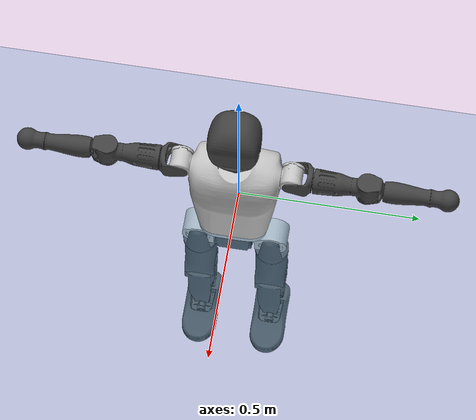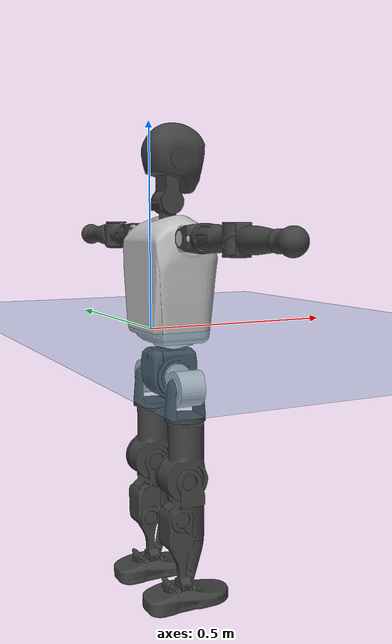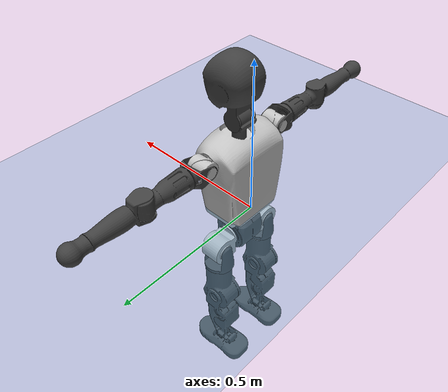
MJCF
<mujoco model="T1">
  <compiler angle="radian" assetdir="assets" balanceinertia="true" inertiafromgeom="false"/>

  <option timestep="0.005" density="1.2" viscosity="2e-05"/>

  <size nkey="1"/>

  <visual>
    <quality shadowsize="8192"/>
    <map shadowclip="0.5"/>
  </visual>

  <default>
    <default class="/">
      <joint armature="0.01" damping="0.01" frictionloss="0.1"/>
      <geom contype="0" conaffinity="0" group="1" solref="-1000 -80"/>
      <site size="0.01 0.005 0.005" group="5"/>
      <general forcelimited="true" biastype="affine" gainprm="25" biasprm="0 -25 -0.6"/>
      <default class="t1">
        <geom rgba="0.25 0.25 0.25 1"/>
        <default class="visual">
          <geom type="mesh" group="2"/>
        </default>
        <default class="collision">
          <geom group="3"/>
        </default>
        <default class="foot">
          <geom size="0.1115 0.05 0.015" type="box" condim="6" group="4" priority="1" solimp="0.015 1 0.015"/>
        </default>
        <default class="reward_collision_sphere">
          <geom group="5" rgba="1 0 0 1"/>
        </default>
      </default>
    </default>
  </default>

  <asset>
    <texture type="skybox" colorspace="auto" name="//unnamed_texture_0" builtin="gradient" rgb1="0.95 0.95 0.95" rgb2="0.95 0.95 0.95" width="100" height="600"/>
    <texture type="2d" colorspace="auto" name="texplane" builtin="checker" rgb1="0.345 0.575 0.748" rgb2="0.345 0.575 0.748" markrgb="1 1 1" width="512" height="512"/>
    <material name="MatPlane" class="/" texture="texplane" texuniform="true" texrepeat="2 2" specular="0.9"/>
    <mesh name="Trunk" class="/" file="Trunk.stl"/>
    <mesh name="H1" class="/" file="H1.stl"/>
    <mesh name="H2" class="/" file="H2.stl"/>
    <mesh name="AL1" class="/" file="AL1.stl"/>
    <mesh name="AL2" class="/" file="AL2.stl"/>
    <mesh name="AL3" class="/" file="AL3.stl"/>
    <mesh name="left_hand_link" class="/" file="left_hand_link.stl"/>
    <mesh name="AR1" class="/" file="AR1.stl"/>
    <mesh name="AR2" class="/" file="AR2.stl"/>
    <mesh name="AR3" class="/" file="AR3.stl"/>
    <mesh name="right_hand_link" class="/" file="right_hand_link.stl"/>
    <mesh name="Waist" class="/" file="Waist.stl"/>
    <mesh name="Hip_Pitch_Left" class="/" file="Hip_Pitch_Left.stl"/>
    <mesh name="Hip_Roll_Left" class="/" file="Hip_Roll_Left.stl"/>
    <mesh name="Hip_Yaw_Left" class="/" file="Hip_Yaw_Left.stl"/>
    <mesh name="Shank_Left" class="/" file="Shank_Left.stl"/>
    <mesh name="Ankle_Cross_Left" class="/" file="Ankle_Cross_Left.stl"/>
    <mesh name="left_foot_link" class="/" file="left_foot_link.stl"/>
    <mesh name="Hip_Pitch_Right" class="/" file="Hip_Pitch_Right.stl"/>
    <mesh name="Hip_Roll_Right" class="/" file="Hip_Roll_Right.stl"/>
    <mesh name="Hip_Yaw_Right" class="/" file="Hip_Yaw_Right.stl"/>
    <mesh name="Shank_Right" class="/" file="Shank_Right.stl"/>
    <mesh name="Ankle_Cross_Right" class="/" file="Ankle_Cross_Right.stl"/>
    <mesh name="right_foot_link" class="/" file="right_foot_link.stl"/>
  </asset>

  <worldbody>
    <geom name="floor" class="/" size="100 100 0.125" type="plane" group="0" material="MatPlane"/>
    <light name="toplight_shadow" class="/" pos="0 0 5" dir="0.0990148 0.0990148 -0.990148" type="directional" ambient="0.04 0.04 0.04" diffuse="0.55 0.55 0.55" specular="0.12 0.12 0.12"/>
    <light name="toplight_fill" class="/" pos="0 0 5" dir="0.0990148 0.0990148 -0.990148" type="directional" castshadow="false" ambient="0.04 0.04 0.04" diffuse="0.3 0.3 0.3" specular="0.08 0.08 0.08"/>
    <body name="trunk" childclass="t1" pos="7.70888e-05 0.000474643 -0.000694962" quat="1 1.45147e-05 6.50099e-05 7.39972e-06">
      <inertial pos="0.0427019 0.000194597 0.10757" quat="0.99992 0.00224332 -0.0122727 0.00203365" mass="9.44084" diaginertia="0.0281546 0.06759 0.0632536"/>
      <joint name="//unnamed_joint_0" type="free" armature="0" damping="0" frictionloss="0"/>
      <geom name="//unnamed_geom_1" class="visual" rgba="0.76 0.76 0.76 1" mesh="Trunk"/>
      <geom name="//unnamed_geom_2" class="collision" size="0.0697 0.0929334 0.1394" pos="0.0474257 0 0.123052" type="box"/>
      <geom name="//unnamed_geom_3" class="reward_collision_sphere" size="0.106873" pos="0.0474257 0 0.102543"/>
      <geom name="//unnamed_geom_4" class="reward_collision_sphere" size="0.01394" pos="0.0474257 0.0826319 0"/>
      <geom name="//unnamed_geom_5" class="reward_collision_sphere" size="0.01394" pos="0.0474257 -0.0826319 0"/>
      <geom name="//unnamed_geom_6" class="reward_collision_sphere" size="0.01394" pos="0.0474257 0.104019 0.184578"/>
      <geom name="//unnamed_geom_7" class="reward_collision_sphere" size="0.01394" pos="0.0474257 -0.104019 0.184578"/>
      <site name="imu" pos="8.75467e-07 -0.00107839 0.00174497" size="0.00929334"/>
      <camera name="track" pos="0 -1.94428 0" quat="0.707107 0.707107 0 0" mode="trackcom"/>
      <camera name="ego_camera" pos="0.0964323 0 0.430682" quat="-0.5 -0.5 0.5 0.5"/>
      <body name="H1" pos="0.0485963 0.000715467 0.248974" quat="1 8.10245e-05 -0.000103196 0.000162711">
        <inertial pos="-0.00135621 -0.00215304 0.0585189" quat="0.764139 -0.0131111 0.00184311 0.644916" mass="0.354896" diaginertia="7.49742e-05 0.000191738 0.000168794"/>
        <joint name="AAHead_yaw" pos="0 0 0" axis="0.000320992 0.0011299 0.999999" range="-1.57875 1.58068" armature="0.00941184" damping="0.0119249" frictionloss="0.097094"/>
        <geom name="//unnamed_geom_8" class="visual" mesh="H1"/>
        <body name="H2" pos="-0.000715012 -0.00050992 0.0622731" quat="1 5.55648e-05 -0.000361916 -0.00013909">
          <inertial pos="0.00614623 -3.7018e-05 0.1004" quat="0.987819 0.107822 -0.0768896 -0.0817053" mass="0.506077" diaginertia="0.000629218 0.00169483 0.00193582"/>
          <joint name="Head_pitch" pos="0 0 0" axis="0.00214554 -0.999992 -0.00330822" range="-1.21161 0.353668" armature="0.00920479" damping="0.00444282" frictionloss="0.0928906"/>
          <geom name="//unnamed_geom_9" class="visual" mesh="H2"/>
          <geom name="//unnamed_geom_10" class="collision" size="0.0743467" pos="0.00790428 0 0.112798"/>
          <geom name="//unnamed_geom_11" class="reward_collision_sphere" size="0.08364" pos="0.0158086 0 0.102543"/>
        </body>
      </body>
      <body name="AL1" pos="0.0459076 0.103542 0.225451" quat="1 9.22564e-05 0.000398055 5.20599e-05">
        <inertial pos="-0.000482306 0.0442815 -0.000238516" quat="0.504237 0.49573 -0.504227 0.495734" mass="0.427973" diaginertia="0.000429263 0.00113322 0.000336233"/>
        <joint name="Left_Shoulder_Pitch" pos="0 0 0" axis="-0.00239723 0.999995 -0.00181428" range="-3.30174 1.21782" armature="0.00972806" damping="0.0120955" frictionloss="0.0956104"/>
        <geom name="//unnamed_geom_12" class="visual" rgba="0.76 0.76 0.76 1" mesh="AL1"/>
        <body name="AL2" pos="0.000327605 0.046121 1.12478e-05" quat="1 1.01694e-06 -1.39579e-05 2.39591e-05">
          <inertial pos="0.00362405 0.0359612 -0.000232799" quat="0.491387 0.510207 -0.486223 0.511679" mass="0.128757" diaginertia="0.000123645 0.000301044 0.000201571"/>
          <joint name="Left_Shoulder_Roll" pos="0 0 0" axis="-0.999999 -0.000922909 0.000920026" stiffness="0.00265177" range="-1.57065 1.73063" armature="0.00887905" damping="0.000779247" frictionloss="0.0924878"/>
          <geom name="//unnamed_geom_13" class="visual" mesh="AL2"/>
          <body name="AL3" pos="0.0015811 0.0595261 0.000698131" quat="1 1.68828e-05 -1.34641e-06 1.79205e-05">
            <inertial pos="-0.000298226 0.0834035 -0.000753484" quat="0.708468 0.705739 -0.00190754 0.00157833" mass="0.825783" diaginertia="0.00399304 0.0113387 0.000707687"/>
            <joint name="Left_Elbow_Pitch" pos="0 0 0" axis="-0.00117828 -0.999999 -0.00073073" range="-2.26693 2.27946" armature="0.00903104" damping="0.00921656" frictionloss="0.0954965"/>
            <geom name="//unnamed_geom_14" class="visual" mesh="AL3"/>
            <geom name="//unnamed_geom_15" class="collision" size="0.02788 0.0697" pos="0 0.048607 0" quat="0.707105 0.707108 0 0" type="cylinder"/>
            <geom name="//unnamed_geom_16" class="reward_collision_sphere" size="0.033456"/>
            <body name="left_hand_link" pos="0.00131165 0.142986 0.00103885" quat="1 -0.000148059 -0.00011154 2.27661e-05">
              <inertial pos="-0.00080536 0.105814 0.000108764" quat="0.707011 0.707199 0.00183449 -0.000671524" mass="0.26463" diaginertia="0.00252249 0.00699046 0.00024413"/>
              <joint name="Left_Elbow_Yaw" pos="0 0 0" axis="0.00118915 0.000584518 0.999999" range="-2.43157 0.0136681" armature="0.00950306" damping="0.00962997" frictionloss="0.0892901"/>
              <geom name="//unnamed_geom_17" class="visual" mesh="left_hand_link"/>
              <geom name="//unnamed_geom_18" class="collision" size="0.02788 0.0813167" pos="0 0.126378 0" quat="0.707105 0.707108 0 0" type="cylinder"/>
              <geom name="//unnamed_geom_19" class="reward_collision_sphere" size="0.0464667"/>
              <geom name="//unnamed_geom_20" class="reward_collision_sphere" size="0.0325267" pos="0 0.106935 0"/>
              <geom name="//unnamed_geom_21" class="reward_collision_sphere" size="0.0325267" pos="0 0.20901 0"/>
            </body>
          </body>
        </body>
      </body>
      <body name="AR1" pos="0.0445411 -0.102413 0.224327" quat="1 -6.436e-05 0.000406953 5.73033e-05">
        <inertial pos="-0.00132477 -0.0437819 -0.000300035" quat="0.504231 0.495231 -0.505392 0.495051" mass="0.421025" diaginertia="0.000422182 0.00113361 0.000332468"/>
        <joint name="Right_Shoulder_Pitch" pos="0 0 0" axis="0.00252455 -0.999981 0.00560353" range="-1.22607 3.31164" armature="0.00903609" damping="0.00340702" frictionloss="0.0914124"/>
        <geom name="//unnamed_geom_22" class="visual" rgba="0.76 0.76 0.76 1" mesh="AR1"/>
        <body name="AR2" pos="-7.44384e-05 -0.0444739 0.000461237" quat="1 9.61337e-05 -9.32946e-05 -5.57846e-06">
          <inertial pos="0.0022645 -0.0370021 0.00081095" quat="0.511739 0.487952 -0.511632 0.488118" mass="0.128986" diaginertia="0.000123918 0.000303363 0.000201412"/>
          <joint name="Right_Shoulder_Roll" pos="0 0 0" axis="-0.999933 0.00951776 -0.0065323" range="-1.73393 1.5568" armature="0.00910025" damping="0.00909416" frictionloss="0.0905887"/>
          <geom name="//unnamed_geom_23" class="visual" mesh="AR2"/>
          <body name="AR3" pos="-0.000159573 -0.0585897 0.000898468" quat="1 0.000286852 -0.000133061 0.000146403">
            <inertial pos="-0.000414536 -0.0836769 -0.000328183" quat="0.708888 0.705318 0.000841798 -0.00197095" mass="0.822415" diaginertia="0.00402343 0.0112695 0.000713389"/>
            <joint name="Right_Elbow_Pitch" pos="0 0 0" axis="-0.00105522 0.999999 -0.000384699" range="-2.25836 2.27461" armature="0.00944926" damping="0.00569077" frictionloss="0.0936023"/>
            <geom name="//unnamed_geom_24" class="visual" mesh="AR3"/>
            <geom name="//unnamed_geom_25" class="collision" size="0.02788 0.0697" pos="0 -0.048607 0" quat="0.707105 0.707108 0 0" type="cylinder"/>
            <geom name="//unnamed_geom_26" class="reward_collision_sphere" size="0.033456"/>
            <body name="right_hand_link" pos="-0.000298 -0.142706 -0.000873036" quat="1 3.39905e-05 0.000142351 0.000202305">
              <inertial pos="-0.000428258 -0.106347 0.000617035" quat="0.705183 0.709013 -0.00299087 0.00272239" mass="0.263702" diaginertia="0.00255127 0.00711005 0.000246878"/>
              <joint name="Right_Elbow_Yaw" pos="0 0 0" axis="0.0018017 -0.000590912 0.999998" range="-0.00455883 2.43265" armature="0.00921326" damping="0.0067925" frictionloss="0.09371"/>
              <geom name="//unnamed_geom_27" class="visual" mesh="right_hand_link"/>
              <geom name="//unnamed_geom_28" class="collision" size="0.02788 0.0813167" pos="0 -0.126378 0" quat="0.707105 0.707108 0 0" type="cylinder"/>
              <geom name="//unnamed_geom_29" class="reward_collision_sphere" size="0.0464667"/>
              <geom name="//unnamed_geom_30" class="reward_collision_sphere" size="0.0325267" pos="0 -0.106935 0"/>
              <geom name="//unnamed_geom_31" class="reward_collision_sphere" size="0.0325267" pos="0 -0.20901 0"/>
            </body>
          </body>
        </body>
      </body>
      <body name="Waist" pos="0.049032 -0.000704498 -0.117742" quat="1 0.000147541 0.000120504 0.000304979">
        <inertial pos="0.00192978 5.97674e-05 0.00803077" quat="0.983654 0.000353577 -0.18005 0.0026708" mass="2.03122" diaginertia="0.00163592 0.00455265 0.00532972"/>
        <joint name="Waist" pos="0 0 0" axis="-0.00391502 -0.000943475 0.999992" range="-1.57112 1.56917" armature="0.00937247" damping="0.0138108" frictionloss="0.0918206"/>
        <geom name="//unnamed_geom_32" class="visual" mesh="Waist"/>
        <body name="Hip_Pitch_Left" pos="-0.000518015 0.102852 -0.000313096" quat="1 2.61438e-05 4.20869e-06 1.45348e-05">
          <inertial pos="0.000284082 -0.00754875 -0.0186337" quat="0.97476 0.222638 0.0165908 -0.000965873" mass="0.820728" diaginertia="0.000558289 0.00128629 0.00144457"/>
          <joint name="Left_Hip_Pitch" pos="0 0 0" axis="-0.000608304 1 -0.000365933" range="-1.80878 1.57495" armature="0.00923524" damping="0.00779103" frictionloss="0.091681"/>
          <geom name="//unnamed_geom_33" class="visual" rgba="0.76 0.76 0.76 1" mesh="Hip_Pitch_Left"/>
          <body name="Hip_Roll_Left" pos="0.000748875 -0.000460097 -0.0217275" quat="1 -0.000153012 0.000509533 0.000193172">
            <inertial pos="0.00117485 0.000632711 -0.054685" quat="0.705343 -0.00828017 -0.00642067 0.708789" mass="0.309669" diaginertia="0.000543611 0.00133099 0.000586413"/>
            <joint name="Left_Hip_Roll" pos="0 0 0" axis="-0.999998 0.00168356 0.00128541" range="-1.55365 0.203846" armature="0.00924498" damping="0.0114207" frictionloss="0.094028"/>
            <geom name="//unnamed_geom_34" class="visual" mesh="Hip_Roll_Left"/>
            <geom name="//unnamed_geom_35" class="reward_collision_sphere" size="0.0511134"/>
            <body name="Hip_Yaw_Left" pos="0.00192846 -0.00011536 -0.0847182" quat="1 0.0001287 -0.000212465 -9.4294e-05">
              <inertial pos="-0.00485516 -0.000724235 -0.0908404" quat="0.696867 -0.0357885 -0.0323727 0.715575" mass="1.73581" diaginertia="0.00798096 0.021829 0.00289838"/>
              <joint name="Left_Hip_Yaw" pos="0 0 0" axis="0.00479774 0.000831614 -0.999988" range="-0.995942 1.00168" armature="0.00942849" damping="0.00560081" frictionloss="0.0898013"/>
              <geom name="//unnamed_geom_36" class="visual" mesh="Hip_Yaw_Left"/>
              <geom name="//unnamed_geom_37" class="collision" size="0.0464667 0.0743467" type="cylinder"/>
              <body name="Shank_Left" pos="-0.011483 -0.000267462 -0.138169" quat="1 5.82349e-05 -2.65181e-05 4.55984e-05">
                <inertial pos="-0.00510667 0.000817288 -0.127843" quat="0.997677 0.0027901 -0.0221259 0.0643725" mass="1.40796" diaginertia="0.0107508 0.0304932 0.00213242"/>
                <joint name="Left_Knee_Pitch" pos="0 0 0" axis="-0.00316952 0.999993 -0.00192254" range="-0.0179357 2.32979" armature="0.00933441" damping="0.00709575" frictionloss="0.0930245"/>
                <geom name="//unnamed_geom_38" class="visual" mesh="Shank_Left"/>
                <geom name="//unnamed_geom_39" class="collision" size="0.0464667 0.0697" pos="0 0 -0.123052" type="cylinder"/>
                <geom name="//unnamed_geom_40" class="reward_collision_sphere" size="0.0604067"/>
                <body name="Ankle_Cross_Left" pos="0.000388063 0.00031433 -0.286888" quat="1 -0.000248756 -5.32371e-05 0.000293955">
                  <inertial pos="-0.0035351 0.000400537 -0.00740804" quat="0.443526 0.551047 0.551066 0.442672" mass="0.0585845" diaginertia="8.87983e-06 2.24129e-05 1.28564e-05"/>
                  <joint name="Left_Ankle_Pitch" pos="0 0 0" axis="-0.00232789 0.999993 0.00291432" range="-0.870959 0.349452" armature="0.00911366" damping="0.00455356" frictionloss="0.096696"/>
                  <geom name="//unnamed_geom_41" class="visual" mesh="Ankle_Cross_Left"/>
                  <body name="left_foot_link" pos="0.000190081 -0.0012557 -0.0124207" quat="1 0.000172408 4.83053e-05 7.8967e-05">
                    <inertial pos="-7.72969e-05 -0.000338982 -0.00942557" quat="9.20742e-05 0.623461 0.00285967 0.781849" mass="0.551034" diaginertia="0.000844615 0.00205616 0.00246799"/>
                    <joint name="Left_Ankle_Roll" pos="0 0 0" axis="-0.999998 0.000882753 -0.00188741" stiffness="2.79268e-05" range="-0.438995 0.445398" armature="0.00958231" damping="0.00814657" frictionloss="0.0926125"/>
                    <geom name="//unnamed_geom_42" class="visual" mesh="left_foot_link"/>
                    <geom name="left_foot" class="foot" size="0.101753 0.0438627 0.0140075" pos="0.00790428 0 -0.0153815"/>
                    <geom name="//unnamed_geom_44" class="reward_collision_sphere" size="0.0483254" pos="0.00790428 0 -0.0153815"/>
                    <geom name="//unnamed_geom_45" class="reward_collision_sphere" size="0.02788" pos="0.0750907 -0.0223592 -0.0153815"/>
                    <geom name="//unnamed_geom_46" class="reward_collision_sphere" size="0.02788" pos="-0.05533 -0.0223592 -0.0153815"/>
                    <site name="left_foot" class="foot" pos="0.00790428 0 -0.0153815" size="0.00929334"/>
                  </body>
                </body>
              </body>
            </body>
          </body>
        </body>
        <body name="Hip_Pitch_Right" pos="-0.00101462 -0.102797 0.000388839" quat="1 0.000355588 -8.20173e-05 0.000289441">
          <inertial pos="0.000558949 0.00762059 -0.0183543" quat="0.97425 -0.224825 0.0166914 -0.0033602" mass="0.830327" diaginertia="0.000560274 0.00128318 0.00142732"/>
          <joint name="Right_Hip_Pitch" pos="0 0 0" axis="-1.3373e-06 -1 -0.000152526" range="-1.56178 1.81812" armature="0.00975418" damping="0.00551597" frictionloss="0.0962292"/>
          <geom name="//unnamed_geom_47" class="visual" rgba="0.76 0.76 0.76 1" mesh="Hip_Pitch_Right"/>
          <body name="Hip_Roll_Right" pos="-0.000387716 0.00100282 -0.020658" quat="1 0.000262593 1.42773e-05 0.000272299">
            <inertial pos="0.00104485 -0.00058099 -0.0542803" quat="0.707129 -0.00603969 -0.00632132 0.707031" mass="0.307121" diaginertia="0.000532735 0.00129949 0.000577285"/>
            <joint name="Right_Hip_Roll" pos="0 0 0" axis="-0.999984 0.00502695 -0.00250615" stiffness="0.000854006" range="-0.197775 1.57081" armature="0.00916693" damping="0.00765165" frictionloss="0.0959743"/>
            <geom name="//unnamed_geom_48" class="visual" mesh="Hip_Roll_Right"/>
            <geom name="//unnamed_geom_49" class="reward_collision_sphere" size="0.0511134"/>
            <body name="Hip_Yaw_Right" pos="-0.000343678 0.000522854 -0.0847462" quat="1 -2.92297e-05 -8.03396e-05 -1.30178e-05">
              <inertial pos="-0.00471717 -0.00123094 -0.0922601" quat="0.714236 -0.0315015 -0.0342917 0.698354" mass="1.70341" diaginertia="0.00786268 0.0217755 0.00289532"/>
              <joint name="Right_Hip_Yaw" pos="0 0 0" axis="0.00104805 1.34932e-05 -0.999999" range="-0.985516 0.994126" armature="0.00904929" damping="0.00748383" frictionloss="0.0926429"/>
              <geom name="//unnamed_geom_50" class="visual" mesh="Hip_Yaw_Right"/>
              <geom name="//unnamed_geom_51" class="collision" size="0.0464667 0.0743467" type="cylinder"/>
              <body name="Shank_Right" pos="-0.0109102 -0.000669841 -0.138189" quat="1 0.000107234 5.9769e-05 -7.47617e-05">
                <inertial pos="-0.00488209 -0.000166678 -0.12505" quat="0.999241 -0.00256351 -0.0225485 -0.0316493" mass="1.44583" diaginertia="0.0107856 0.0306195 0.00224265"/>
                <joint name="Right_Knee_Pitch" pos="0 0 0" axis="0.00595954 -0.999974 0.00415404" range="-2.35667 -0.00890352" armature="0.00926349" damping="0.00849684" frictionloss="0.0927627"/>
                <geom name="//unnamed_geom_52" class="visual" mesh="Shank_Right"/>
                <geom name="//unnamed_geom_53" class="collision" size="0.0464667 0.0697" pos="0 0 -0.123052" type="cylinder"/>
                <geom name="//unnamed_geom_54" class="reward_collision_sphere" size="0.0604067"/>
                <body name="Ankle_Cross_Right" pos="0.0003904 -0.000225925 -0.287084" quat="1 -3.83844e-06 -0.000270924 0.000188848">
                  <inertial pos="-0.00330681 0.000548214 -0.00843434" quat="0.444423 0.550428 0.550136 0.443698" mass="0.0586363" diaginertia="8.87898e-06 2.2148e-05 1.28176e-05"/>
                  <joint name="Right_Ankle_Pitch" pos="0 0 0" axis="-0.000611981 -1 -2.5262e-05" range="-0.367348 0.865132" armature="0.00929002" damping="0.00965121" frictionloss="0.0955482"/>
                  <geom name="//unnamed_geom_55" class="visual" mesh="Ankle_Cross_Right"/>
                  <body name="right_foot_link" pos="0.000983279 -0.00136923 -0.0123452" quat="1 -0.000146133 2.54903e-05 6.19073e-05">
                    <inertial pos="-0.000899864 0.000787432 -0.00943959" quat="0.00240237 0.621248 -0.00326729 0.783604" mass="0.547612" diaginertia="0.00082884 0.00206128 0.00249268"/>
                    <joint name="Right_Ankle_Roll" pos="0 0 0" axis="-0.999999 -0.00053424 0.000981212" range="-0.449305 0.433799" armature="0.00895647" damping="0.0112289" frictionloss="0.092559"/>
                    <geom name="//unnamed_geom_56" class="visual" mesh="right_foot_link"/>
                    <geom name="right_foot" class="foot" size="0.101488 0.046003 0.0142282" pos="0.00790428 0 -0.0153815"/>
                    <geom name="//unnamed_geom_58" class="reward_collision_sphere" size="0.0371733"/>
                    <geom name="//unnamed_geom_59" class="reward_collision_sphere" size="0.02788" pos="0.00790428 0 -0.0153815"/>
                    <geom name="//unnamed_geom_60" class="reward_collision_sphere" size="0.02788" pos="0.0750907 0.0223592 -0.0153815"/>
                    <geom name="//unnamed_geom_61" class="reward_collision_sphere" size="0.02788" pos="-0.05533 0.0223592 -0.0153815"/>
                    <site name="right_foot" class="foot" pos="0.00790428 0 -0.0153815" size="0.00929334"/>
                  </body>
                </body>
              </body>
            </body>
          </body>
        </body>
      </body>
    </body>
  </worldbody>

  <contact>
    <pair class="/" geom1="floor" geom2="left_foot" name="//unnamed_contact_0"/>
    <pair class="/" geom1="floor" geom2="right_foot" name="//unnamed_contact_1"/>
  </contact>

  <actuator>
    <general name="AAHead_yaw" class="/" joint="AAHead_yaw" forcerange="-6.30349 6.30349" gainprm="23.2319" biasprm="0 -23.2319 -0.560047"/>
    <general name="Head_pitch" class="/" joint="Head_pitch" forcerange="-6.31595 6.31595" gainprm="23.2319" biasprm="0 -23.2319 -0.560047"/>
    <general name="Left_Shoulder_Pitch" class="/" joint="Left_Shoulder_Pitch" forcerange="-16.8821 16.8821" gainprm="23.2319" biasprm="0 -23.2319 -0.560047"/>
    <general name="Left_Shoulder_Roll" class="/" joint="Left_Shoulder_Roll" forcerange="-16.6255 16.6255" gainprm="23.2319" biasprm="0 -23.2319 -0.560047"/>
    <general name="Left_Elbow_Pitch" class="/" joint="Left_Elbow_Pitch" forcerange="-16.8599 16.8599" gainprm="23.2319" biasprm="0 -23.2319 -0.560047"/>
    <general name="Left_Elbow_Yaw" class="/" joint="Left_Elbow_Yaw" forcerange="-17.4086 17.4086" gainprm="23.2319" biasprm="0 -23.2319 -0.560047"/>
    <general name="Right_Shoulder_Pitch" class="/" joint="Right_Shoulder_Pitch" forcerange="-16.5982 16.5982" gainprm="23.2319" biasprm="0 -23.2319 -0.560047"/>
    <general name="Right_Shoulder_Roll" class="/" joint="Right_Shoulder_Roll" forcerange="-16.7499 16.7499" gainprm="23.2319" biasprm="0 -23.2319 -0.560047"/>
    <general name="Right_Elbow_Pitch" class="/" joint="Right_Elbow_Pitch" forcerange="-16.9076 16.9076" gainprm="23.2319" biasprm="0 -23.2319 -0.560047"/>
    <general name="Right_Elbow_Yaw" class="/" joint="Right_Elbow_Yaw" forcerange="-16.4312 16.4312" gainprm="23.2319" biasprm="0 -23.2319 -0.560047"/>
    <general name="Waist" class="/" joint="Waist" forcerange="-27.5256 27.5256" gainprm="23.2319" biasprm="0 -23.2319 -0.560047"/>
    <general name="Left_Hip_Pitch" class="/" joint="Left_Hip_Pitch" forcerange="-41.772 41.772" gainprm="23.2319" biasprm="0 -23.2319 -0.560047"/>
    <general name="Left_Hip_Roll" class="/" joint="Left_Hip_Roll" forcerange="-27.765 27.765" gainprm="23.2319" biasprm="0 -23.2319 -0.560047"/>
    <general name="Left_Hip_Yaw" class="/" joint="Left_Hip_Yaw" forcerange="-27.1779 27.1779" gainprm="23.2319" biasprm="0 -23.2319 -0.560047"/>
    <general name="Left_Knee_Pitch" class="/" joint="Left_Knee_Pitch" forcerange="-53.9682 53.9682" gainprm="23.2319" biasprm="0 -23.2319 -0.560047"/>
    <general name="Left_Ankle_Pitch" class="/" joint="Left_Ankle_Pitch" forcerange="-17.843 17.843" gainprm="23.2319" biasprm="0 -23.2319 -0.560047"/>
    <general name="Left_Ankle_Roll" class="/" joint="Left_Ankle_Roll" forcerange="-14.1042 14.1042" gainprm="23.2319" biasprm="0 -23.2319 -0.560047"/>
    <general name="Right_Hip_Pitch" class="/" joint="Right_Hip_Pitch" forcerange="-42.1058 42.1058" gainprm="23.2319" biasprm="0 -23.2319 -0.560047"/>
    <general name="Right_Hip_Roll" class="/" joint="Right_Hip_Roll" forcerange="-28.7243 28.7243" gainprm="23.2319" biasprm="0 -23.2319 -0.560047"/>
    <general name="Right_Hip_Yaw" class="/" joint="Right_Hip_Yaw" forcerange="-28.7962 28.7962" gainprm="23.2319" biasprm="0 -23.2319 -0.560047"/>
    <general name="Right_Knee_Pitch" class="/" joint="Right_Knee_Pitch" forcerange="-54.9065 54.9065" gainprm="23.2319" biasprm="0 -23.2319 -0.560047"/>
    <general name="Right_Ankle_Pitch" class="/" joint="Right_Ankle_Pitch" forcerange="-17.9774 17.9774" gainprm="23.2319" biasprm="0 -23.2319 -0.560047"/>
    <general name="Right_Ankle_Roll" class="/" joint="Right_Ankle_Roll" forcerange="-13.8319 13.8319" gainprm="23.2319" biasprm="0 -23.2319 -0.560047"/>
  </actuator>

  <sensor>
    <gyro site="imu" name="imu_angular_velocity"/>
    <velocimeter site="imu" name="imu_linear_velocity"/>
    <framelinvel objtype="site" objname="left_foot" name="left_foot_global_linear_velocity"/>
    <framelinvel objtype="site" objname="right_foot" name="right_foot_global_linear_velocity"/>
  </sensor>

  <keyframe>
    <key name="home" qpos="0 0 0.6385 1 0 0 0 0 0 0 1.4 0 -0.4 0 -1.4 0 0.4 0 -0.4 0 0 0.8 -0.4 0 0.4 0 0 -0.8 0.4 0"/>
  </keyframe>
</mujoco>
